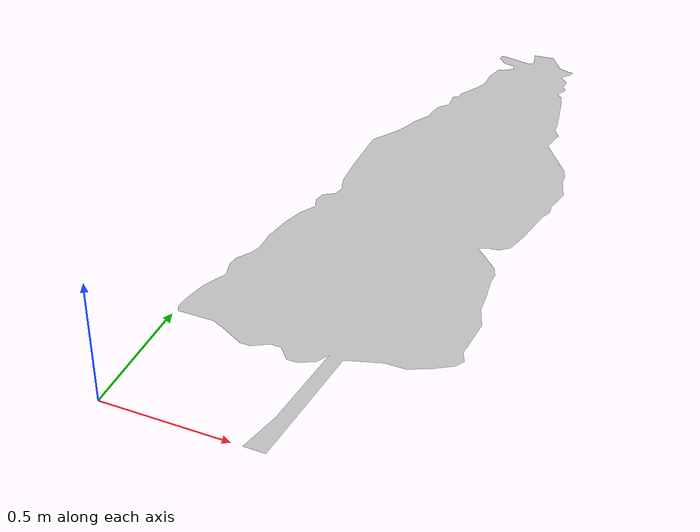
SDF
<?xml version="1.0" ?>
<sdf version="1.5">
  <model name="Pine Tree">
    <pose>0 0 0  0 0 0</pose>
    <static>true</static>
    <link name="link">
      <inertial>
        <mass>40.0</mass>
        <inertia>
          <ixx>1</ixx>
          <ixy>0</ixy>
          <ixz>0</ixz>
          <iyy>1</iyy>
          <iyz>0</iyz>
          <izz>1</izz>
        </inertia>
      </inertial>

      <collision name="collision">
        <geometry>
          <cylinder>
            <length>5</length>
            <radius>0.3</radius>
          </cylinder>
        </geometry>
        <pose>1.25 1.25 2.5  0 0 0</pose>
      </collision>

      <visual name="visual">
        <geometry>
          <mesh>
            <uri>model://pine_tree/meshes/pine_tree.dae</uri>
            <scale>1.5 1.5 1.5</scale>
          </mesh>
	      </geometry>
      </visual>
    </link>
  </model>
</sdf>
